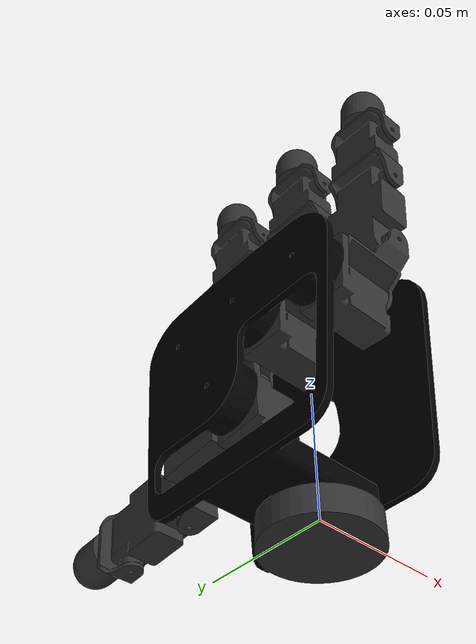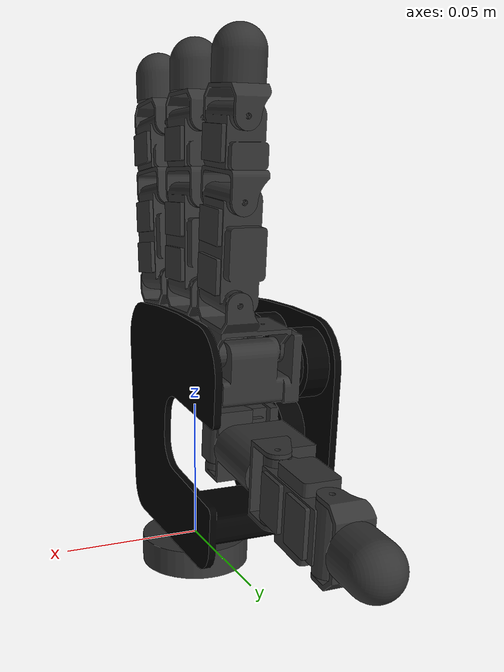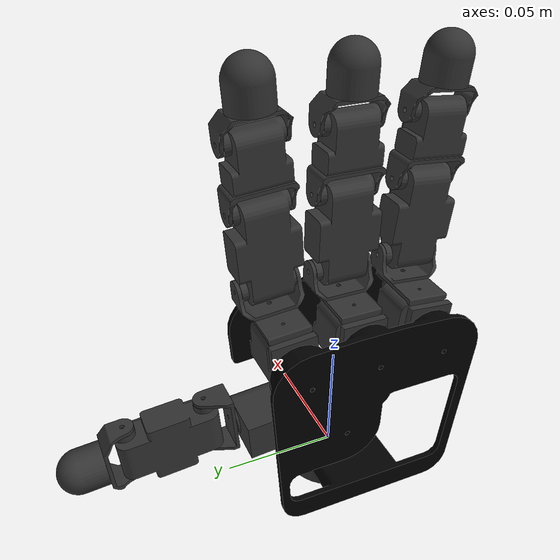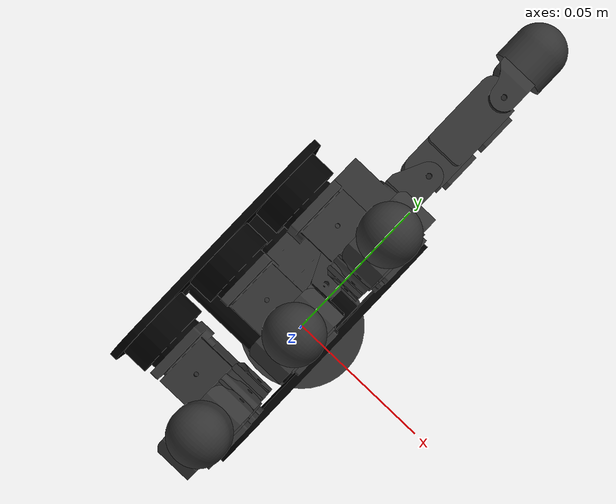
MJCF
<mujoco model="KISTAR_HAND">
  <compiler angle="radian" meshdir="meshes/kistar/" boundmass="0.0001" boundinertia="1e-09"/>

  <option timestep="0.0005" integrator="implicitfast" solver="Newton" iterations="100" tolerance="1e-10">
    <flag contact="disable"/>
  </option>

  <default>
    <position kp="30" kv="0.7" forcerange="-100 100"/>
    <geom contype="0" conaffinity="0" group="1" density="0" rgba="0.2 0.2 0.2 1"/>
  </default>

  <asset>
    <mesh name="mount"            file="mount.STL"/>
    <mesh name="palm"             file="Palm.STL"/>
    <mesh name="thp1"             file="thp1.STL"/>
    <mesh name="thumb_link_0"     file="thumb_link_0.STL"/>
    <mesh name="thumb_link_1"     file="thumb_link_1.STL"/>
    <mesh name="thumb_link_2"     file="thumb_link_2.STL"/>
    <mesh name="finger_basemotor" file="finger_basemotor.STL"/>
    <mesh name="finger_link_0"    file="finger_link_0.STL"/>
    <mesh name="finger_link_1"    file="finger_link_1.STL"/>
    <mesh name="finger_link_2"    file="finger_link_2.STL"/>
    <mesh name="finger_halfmotor" file="finger_halfmotor.STL"/>
    <mesh name="Tip_braket"       file="Tip_braket.STL"/>
    <mesh name="finger_tip"       file="finger_tip.STL"/>
    <mesh name="sensor"           file="sensor.STL"/>
  </asset>

  <worldbody>

    <body name="mount" pos="0 0 0">
      <geom type="mesh" mesh="mount"/>

      <body name="palm" pos="0 0 0.071">
        <inertial pos="-0.01669 0.00079 -0.02862" mass="0.15476"
                  fullinertia="0.00032705182 0.00035100257 0.00016323150 -0.00001050022 0.00005386046 -0.00000337009"/>
        <geom type="mesh" mesh="palm" rgba="0 0 0 1"/>

        <!-- ============================== THUMB ============================== -->
        <body name="thumb_basemotor" pos="-0.02325 0.01224 -0.02988" euler="-0.0873 0 0">
          <geom type="mesh" mesh="thp1"/>

          <body name="thumb_link_0" pos="0.0197 0.002 0" euler="-1.5708 0 0">
            <inertial pos="-0.00714 0 0.02081" mass="0.02423"
                      fullinertia="0.00001317338 0.00001497641 0.00000318767 0 -0.00000386319 0"/>
            <joint name="thumb_joint_0" axis="0 1 0" range="0 1.5708"
                   damping="0.0414019" frictionloss="0.0523963"/>
            <geom type="mesh" mesh="thumb_link_0"/>

            <body name="thumb_link_1" pos="-0.002 0 0.036">
              <inertial pos="0.00043 0 0.00345" mass="0.00191"
                        fullinertia="0.00000023689 0.00000007651 0.00000021019 0 0.00000000784 0"/>
              <joint name="thumb_joint_1" axis="0 0 1" range="-1.5708 1.5708"
                     damping="0.00587541" frictionloss="0.0150275"/>
              <geom type="mesh" mesh="thumb_link_1"/>

              <body name="thumb_link_2" pos="0.002 0 0.0102">
                <inertial pos="-0.00154 0.00021 0.01842" mass="0.01827"
                          fullinertia="0.00000796138 0.00000752132 0.00000105696 -0.00000001114 -0.00000053085 0.00000001719"/>
                <joint name="thumb_joint_2" axis="0 1 0" range="0 1.5708"
                       damping="0.010638" frictionloss="0.00616359"/>
                <geom type="mesh" mesh="thumb_link_2"/>

                <body name="thumb_sensor_0" pos="0.00525 0 0.00865">
                  <geom type="mesh" mesh="sensor"/>
                </body>
                <body name="thumb_sensor_1" pos="0.00525 0 0.02485">
                  <geom type="mesh" mesh="sensor"/>
                </body>

                <body name="thumb_tip_braket" pos="0 0 0.0335">
                  <inertial pos="-0.00190 0 0.01626" mass="0.00719"
                            fullinertia="0.00073654 0.00020117 0.00071277 0 -0.00002227 0"/>
                  <joint name="thumb_joint_3" axis="0 1 0" range="0 1.5708"
                         damping="0.0226948" frictionloss="0.0227036"/>
                  <geom type="mesh" mesh="Tip_braket"/>

                  <body name="thumb_tip" pos="-0.002 0 0.010">
                    <inertial pos="0 0 0.00816" mass="0.00719"
                              fullinertia="0.00030378 0.00030378 0.00027029 0 0 0"/>
                    <geom type="mesh" mesh="finger_tip"/>
                  </body>
                </body>
              </body>
            </body>
          </body>
        </body>

        <!-- ============================== INDEX ============================== -->
        <body name="index_basemotor" pos="-0.02325 0.02935 -0.0004" euler="-0.0873 0 0">
          <geom type="mesh" mesh="finger_basemotor"/>

          <body name="index_link_0" pos="0.02325 0 0.0047">
            <inertial pos="-0.00353 0 0.00948" mass="0.00473"
                      fullinertia="0.00000076951 0.00000092515 0.00000062017 0 -0.00000009858 0"/>
            <joint name="index_joint_0" axis="1 0 0" range="-0.261799 0.261799"
                   damping="0.0414019" frictionloss="0.0523963"/>
            <geom type="mesh" mesh="finger_link_0"/>

            <body name="index_link_1" pos="0.002 0 0.0195">
              <inertial pos="-0.00166 0 0.01675" mass="0.03549"
                        fullinertia="0.00001607025 0.00001510746 0.00000219008 0 -0.00000098913 0"/>
              <joint name="index_joint_1" axis="0 1 0" range="0 1.5708"
                     damping="0.00587541" frictionloss="0.0150275"/>
              <geom type="mesh" mesh="finger_link_1"/>

              <body name="index_sensor_0" pos="0.00525 0 0.00865">
                <geom type="mesh" mesh="sensor"/>
              </body>
              <body name="index_sensor_1" pos="0.00525 0 0.02485">
                <geom type="mesh" mesh="sensor"/>
              </body>

              <body name="index_link_2" pos="0 0 0.0335">
                <inertial pos="-0.00146 0 0.00659" mass="0.00300"
                          fullinertia="0.00200547 0.00050465 0.00196277 0 -0.00005438 0"/>
                <joint name="index_joint_2" axis="0 1 0" range="0 1.5708"
                       damping="0.010638" frictionloss="0.00616359"/>
                <geom type="mesh" mesh="finger_link_2"/>

                <body name="index_finger_motor" pos="0 0 0.0267">
                  <inertial pos="-0.00163 0 0.00677" mass="0.015"
                            fullinertia="0.00041537 0.00028785 0.00029216 0 0.00000109 0"/>
                  <geom type="mesh" mesh="finger_halfmotor"/>

                  <body name="index_sensor_2" pos="0.00525 0 -0.00865">
                    <geom type="mesh" mesh="sensor"/>
                  </body>

                  <body name="index_tip_braket" pos="0 0 0">
                    <inertial pos="-0.00137 0 0.00621" mass="0.00719"
                              fullinertia="0.00073654 0.00020117 0.00071277 0 -0.00002227 0"/>
                    <joint name="index_joint_3" axis="0 1 0" range="0 1.5708"
                           damping="0.0226948" frictionloss="0.0227036"/>
                    <geom type="mesh" mesh="Tip_braket"/>

                    <body name="index_tip" pos="-0.002 0 0.010">
                      <inertial pos="0 0 0.00816" mass="0.00719"
                                fullinertia="0.00030378 0.00030378 0.00027029 0 0 0"/>
                      <geom type="mesh" mesh="finger_tip"/>
                    </body>
                  </body>
                </body>
              </body>
            </body>
          </body>
        </body>

        <!-- ============================== MIDDLE ============================== -->
        <body name="middle_basemotor" pos="-0.02325 0 0">
          <geom type="mesh" mesh="finger_basemotor"/>

          <body name="middle_link_0" pos="0.02325 0 0.0047">
            <inertial pos="-0.00353 0 0.00948" mass="0.00473"
                      fullinertia="0.00000076951 0.00000092515 0.00000062017 0 -0.00000009858 0"/>
            <joint name="middle_joint_0" axis="1 0 0" range="-0.261799 0.261799"
                   damping="0.0414019" frictionloss="0.0523963"/>
            <geom type="mesh" mesh="finger_link_0"/>

            <body name="middle_link_1" pos="0.002 0 0.0195">
              <inertial pos="-0.00166 0 0.01675" mass="0.03549"
                        fullinertia="0.00001607025 0.00001510746 0.00000219008 0 -0.00000098913 0"/>
              <joint name="middle_joint_1" axis="0 1 0" range="0 1.5708"
                     damping="0.00587541" frictionloss="0.0150275"/>
              <geom type="mesh" mesh="finger_link_1"/>

              <body name="middle_sensor_0" pos="0.00525 0 0.00865">
                <geom type="mesh" mesh="sensor"/>
              </body>
              <body name="middle_sensor_1" pos="0.00525 0 0.02485">
                <geom type="mesh" mesh="sensor"/>
              </body>

              <body name="middle_link_2" pos="0 0 0.0335">
                <inertial pos="-0.00146 0 0.00659" mass="0.00300"
                          fullinertia="0.00200547 0.00050465 0.00196277 0 -0.00005438 0"/>
                <joint name="middle_joint_2" axis="0 1 0" range="0 1.5708"
                       damping="0.010638" frictionloss="0.00616359"/>
                <geom type="mesh" mesh="finger_link_2"/>

                <body name="middle_finger_motor" pos="0 0 0.0267">
                  <inertial pos="-0.00163 0 0.00677" mass="0.015"
                            fullinertia="0.00041537 0.00028785 0.00029216 0 0.00000109 0"/>
                  <geom type="mesh" mesh="finger_halfmotor"/>

                  <body name="middle_sensor_2" pos="0.00525 0 -0.00865">
                    <geom type="mesh" mesh="sensor"/>
                  </body>

                  <body name="middle_tip_braket" pos="0 0 0">
                    <inertial pos="-0.00137 0 0.00621" mass="0.00719"
                              fullinertia="0.00073654 0.00020117 0.00071277 0 -0.00002227 0"/>
                    <joint name="middle_joint_3" axis="0 1 0" range="0 1.5708"
                           damping="0.0226948" frictionloss="0.0227036"/>
                    <geom type="mesh" mesh="Tip_braket"/>

                    <body name="middle_tip" pos="-0.002 0 0.010">
                      <inertial pos="0 0 0.00816" mass="0.00719"
                                fullinertia="0.00030378 0.00030378 0.00027029 0 0 0"/>
                      <geom type="mesh" mesh="finger_tip"/>
                    </body>
                  </body>
                </body>
              </body>
            </body>
          </body>
        </body>

        <!-- ============================== RING ============================== -->
        <body name="ring_basemotor" pos="-0.02325 -0.02935 -0.0004" euler="0.0873 0 0">
          <geom type="mesh" mesh="finger_basemotor"/>

          <body name="ring_link_0" pos="0.02325 0 0.0047">
            <inertial pos="-0.00353 0 0.00948" mass="0.00473"
                      fullinertia="0.00000076951 0.00000092515 0.00000062017 0 -0.00000009858 0"/>
            <joint name="ring_joint_0" axis="1 0 0" range="-0.261799 0.261799"
                   damping="0.0414019" frictionloss="0.0523963"/>
            <geom type="mesh" mesh="finger_link_0"/>

            <body name="ring_link_1" pos="0.002 0 0.0195">
              <inertial pos="-0.00166 0 0.01675" mass="0.03549"
                        fullinertia="0.00001607025 0.00001510746 0.00000219008 0 -0.00000098913 0"/>
              <joint name="ring_joint_1" axis="0 1 0" range="0 1.5708"
                     damping="0.00587541" frictionloss="0.0150275"/>
              <geom type="mesh" mesh="finger_link_1"/>

              <body name="ring_sensor_0" pos="0.00525 0 0.00865">
                <geom type="mesh" mesh="sensor"/>
              </body>
              <body name="ring_sensor_1" pos="0.00525 0 0.02485">
                <geom type="mesh" mesh="sensor"/>
              </body>

              <body name="ring_link_2" pos="0 0 0.0335">
                <inertial pos="-0.00146 0 0.00659" mass="0.00300"
                          fullinertia="0.00200547 0.00050465 0.00196277 0 -0.00005438 0"/>
                <joint name="ring_joint_2" axis="0 1 0" range="0 1.5708"
                       damping="0.010638" frictionloss="0.00616359"/>
                <geom type="mesh" mesh="finger_link_2"/>

                <body name="ring_finger_motor" pos="0 0 0.0267">
                  <inertial pos="-0.00163 0 0.00677" mass="0.015"
                            fullinertia="0.00041537 0.00028785 0.00029216 0 0.00000109 0"/>
                  <geom type="mesh" mesh="finger_halfmotor"/>

                  <body name="ring_sensor_2" pos="0.00525 0 -0.00865">
                    <geom type="mesh" mesh="sensor"/>
                  </body>

                  <body name="ring_tip_braket" pos="0 0 0">
                    <inertial pos="-0.00137 0 0.00621" mass="0.00719"
                              fullinertia="0.00073654 0.00020117 0.00071277 0 -0.00002227 0"/>
                    <joint name="ring_joint_3" axis="0 1 0" range="0 1.5708"
                           damping="0.0226948" frictionloss="0.0227036"/>
                    <geom type="mesh" mesh="Tip_braket"/>

                    <body name="ring_tip" pos="-0.002 0 0.010">
                      <inertial pos="0 0 0.00816" mass="0.00719"
                                fullinertia="0.00030378 0.00030378 0.00027029 0 0 0"/>
                      <geom type="mesh" mesh="finger_tip"/>
                    </body>
                  </body>
                </body>
              </body>
            </body>
          </body>
        </body>

      </body>
    </body>

  </worldbody>

  <actuator>
    <position name="thumb_act_0"  joint="thumb_joint_0"  ctrlrange="0 1.5708"/>
    <position name="thumb_act_1"  joint="thumb_joint_1"  ctrlrange="-1.5708 1.5708"/>
    <position name="thumb_act_2"  joint="thumb_joint_2"  ctrlrange="0 1.5708"/>
    <position name="thumb_act_3"  joint="thumb_joint_3"  ctrlrange="0 1.5708"/>

    <position name="index_act_0"  joint="index_joint_0"  ctrlrange="-0.261799 0.261799"/>
    <position name="index_act_1"  joint="index_joint_1"  ctrlrange="0 1.5708"/>
    <position name="index_act_2"  joint="index_joint_2"  ctrlrange="0 1.5708"/>

    <position name="middle_act_0" joint="middle_joint_0" ctrlrange="-0.261799 0.261799"/>
    <position name="middle_act_1" joint="middle_joint_1" ctrlrange="0 1.5708"/>
    <position name="middle_act_2" joint="middle_joint_2" ctrlrange="0 1.5708"/>

    <position name="ring_act_0"   joint="ring_joint_0"   ctrlrange="-0.261799 0.261799"/>
    <position name="ring_act_1"   joint="ring_joint_1"   ctrlrange="0 1.5708"/>
    <position name="ring_act_2"   joint="ring_joint_2"   ctrlrange="0 1.5708"/>
  </actuator>

  <!-- Kinematic 1:1 coupling (rigid 4-bar linkage via finger_halfmotor link). -->
  <!-- solref="0.0005 1": 0.5ms time const - near-instant tracking            -->
  <!-- solimp="0.999 0.9999 1e-5": stiff constraint - virtually no slack       -->
  <equality>
    <joint joint1="index_joint_3"  joint2="index_joint_2"  polycoef="0 1 0 0 0" solref="0.0005 1" solimp="0.999 0.9999 1e-5"/>
    <joint joint1="middle_joint_3" joint2="middle_joint_2" polycoef="0 1 0 0 0" solref="0.0005 1" solimp="0.999 0.9999 1e-5"/>
    <joint joint1="ring_joint_3"   joint2="ring_joint_2"   polycoef="0 1 0 0 0" solref="0.0005 1" solimp="0.999 0.9999 1e-5"/>
  </equality>
</mujoco>
